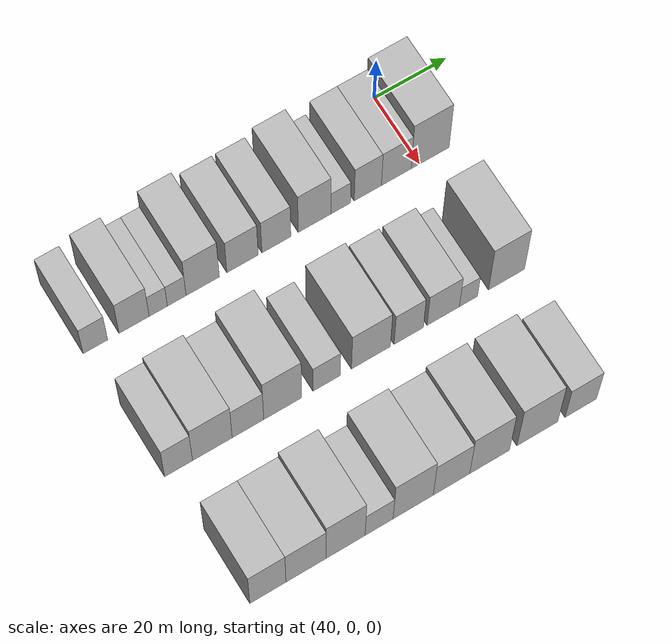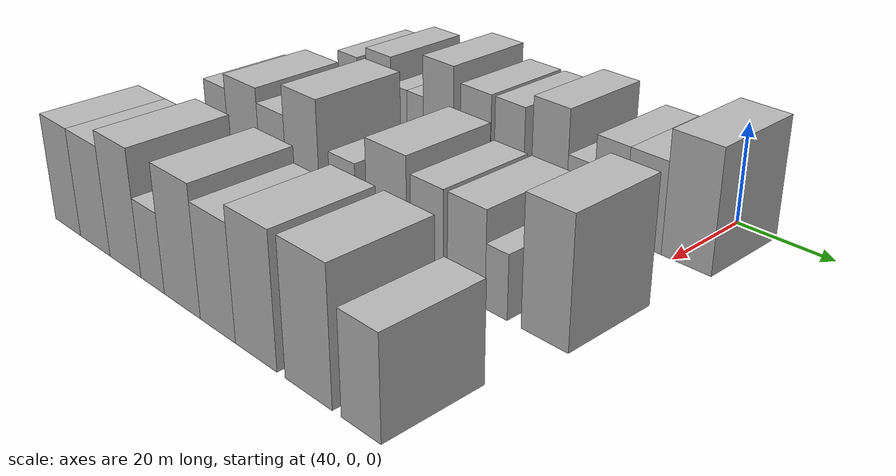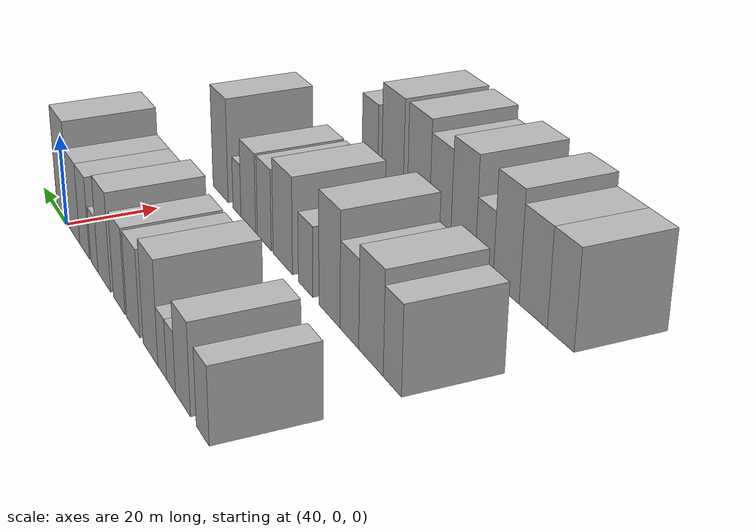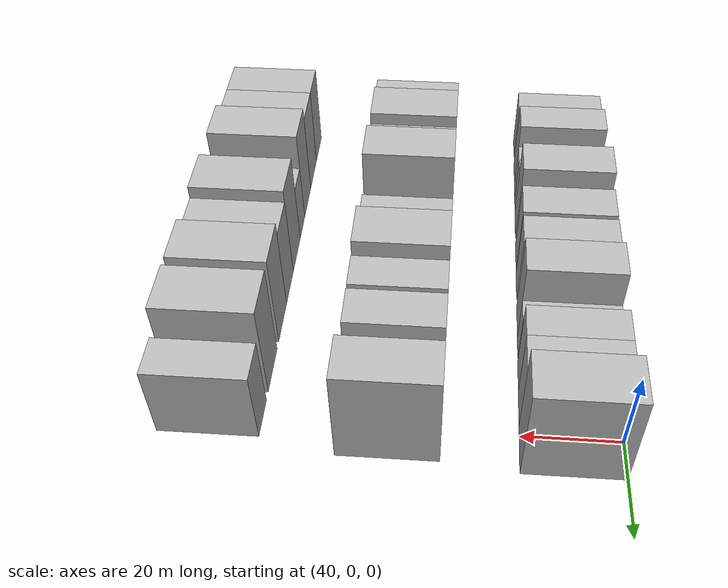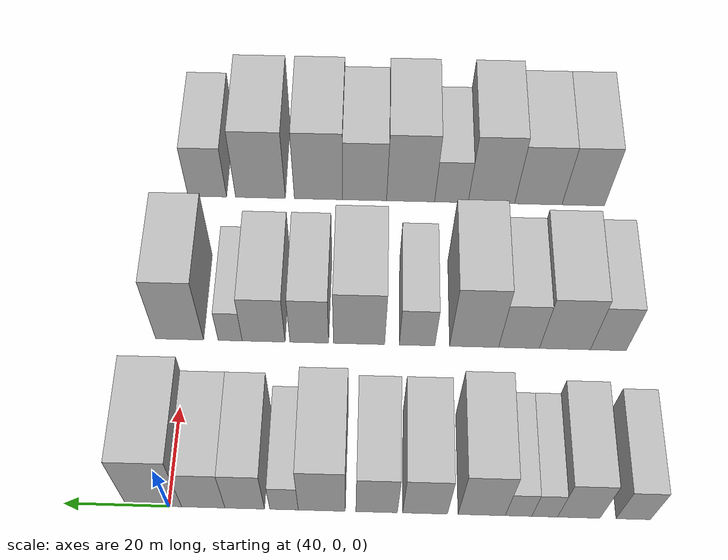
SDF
<sdf version="1.6">
 <world name="default">
  <model name="building_30">
   <static>1</static>
   <pose>50.0000 -87.4244 0 0.000000 0.000000 0.000000</pose>
   <link name="link">
    <pose>0 0 7.50 0 0 0</pose>
    <collision name="collision"><geometry><box><size>20.0000 6.4481 15.0000</size></box></geometry></collision>
    <visual name="visual">
     <cast_shadows>0</cast_shadows>
     <geometry><box><size>20.0000 6.4481 15.0000</size></box></geometry>
     <material>
      <script>
       <uri>model://HANNAS_wall/materials/scripts</uri>
       <uri>model://HANNAS_wall/materials/textures</uri>
       <name>vrc/HANNAS_wall</name>
      </script>
     </material>
    </visual>
   </link>
  </model>
  <model name="building_31">
   <static>1</static>
   <pose>50.0000 -77.2165 0 0.000000 0.000000 0.000000</pose>
   <link name="link">
    <pose>0 0 9.00 0 0 0</pose>
    <collision name="collision"><geometry><box><size>20.0000 7.9678 18.0000</size></box></geometry></collision>
    <visual name="visual">
     <cast_shadows>0</cast_shadows>
     <geometry><box><size>20.0000 7.9678 18.0000</size></box></geometry>
     <material>
      <script>
       <uri>model://HANNAS_wall/materials/scripts</uri>
       <uri>model://HANNAS_wall/materials/textures</uri>
       <name>vrc/HANNAS_wall</name>
      </script>
     </material>
    </visual>
   </link>
  </model>
  <model name="building_32">
   <static>1</static>
   <pose>50.0000 -70.8102 0 0.000000 0.000000 0.000000</pose>
   <link name="link">
    <pose>0 0 6.00 0 0 0</pose>
    <collision name="collision"><geometry><box><size>20.0000 4.8449 12.0000</size></box></geometry></collision>
    <visual name="visual">
     <cast_shadows>0</cast_shadows>
     <geometry><box><size>20.0000 4.8449 12.0000</size></box></geometry>
     <material>
      <script>
       <uri>model://HANNAS_wall/materials/scripts</uri>
       <uri>model://HANNAS_wall/materials/textures</uri>
       <name>vrc/HANNAS_wall</name>
      </script>
     </material>
    </visual>
   </link>
  </model>
  <model name="building_33">
   <static>1</static>
   <pose>50.0000 -65.8977 0 0.000000 0.000000 0.000000</pose>
   <link name="link">
    <pose>0 0 6.00 0 0 0</pose>
    <collision name="collision"><geometry><box><size>20.0000 4.9800 12.0000</size></box></geometry></collision>
    <visual name="visual">
     <cast_shadows>0</cast_shadows>
     <geometry><box><size>20.0000 4.9800 12.0000</size></box></geometry>
     <material>
      <script>
       <uri>model://HANNAS_wall/materials/scripts</uri>
       <uri>model://HANNAS_wall/materials/textures</uri>
       <name>vrc/HANNAS_wall</name>
      </script>
     </material>
    </visual>
   </link>
  </model>
  <model name="building_34">
   <static>1</static>
   <pose>50.0000 -58.9646 0 0.000000 0.000000 0.000000</pose>
   <link name="link">
    <pose>0 0 10.50 0 0 0</pose>
    <collision name="collision"><geometry><box><size>20.0000 8.8863 21.0000</size></box></geometry></collision>
    <visual name="visual">
     <cast_shadows>0</cast_shadows>
     <geometry><box><size>20.0000 8.8863 21.0000</size></box></geometry>
     <material>
      <script>
       <uri>model://HANNAS_wall/materials/scripts</uri>
       <uri>model://HANNAS_wall/materials/textures</uri>
       <name>vrc/HANNAS_wall</name>
      </script>
     </material>
    </visual>
   </link>
  </model>
  <model name="building_35">
   <static>1</static>
   <pose>50.0000 -48.3044 0 0.000000 0.000000 0.000000</pose>
   <link name="link">
    <pose>0 0 9.00 0 0 0</pose>
    <collision name="collision"><geometry><box><size>20.0000 8.4340 18.0000</size></box></geometry></collision>
    <visual name="visual">
     <cast_shadows>0</cast_shadows>
     <geometry><box><size>20.0000 8.4340 18.0000</size></box></geometry>
     <material>
      <script>
       <uri>model://HANNAS_wall/materials/scripts</uri>
       <uri>model://HANNAS_wall/materials/textures</uri>
       <name>vrc/HANNAS_wall</name>
      </script>
     </material>
    </visual>
   </link>
  </model>
  <model name="building_36">
   <static>1</static>
   <pose>50.0000 -39.1806 0 0.000000 0.000000 0.000000</pose>
   <link name="link">
    <pose>0 0 9.00 0 0 0</pose>
    <collision name="collision"><geometry><box><size>20.0000 7.8136 18.0000</size></box></geometry></collision>
    <visual name="visual">
     <cast_shadows>0</cast_shadows>
     <geometry><box><size>20.0000 7.8136 18.0000</size></box></geometry>
     <material>
      <script>
       <uri>model://HANNAS_wall/materials/scripts</uri>
       <uri>model://HANNAS_wall/materials/textures</uri>
       <name>vrc/HANNAS_wall</name>
      </script>
     </material>
    </visual>
   </link>
  </model>
  <model name="building_37">
   <static>1</static>
   <pose>50.0000 -28.8370 0 0.000000 0.000000 0.000000</pose>
   <link name="link">
    <pose>0 0 10.50 0 0 0</pose>
    <collision name="collision"><geometry><box><size>20.0000 8.8737 21.0000</size></box></geometry></collision>
    <visual name="visual">
     <cast_shadows>0</cast_shadows>
     <geometry><box><size>20.0000 8.8737 21.0000</size></box></geometry>
     <material>
      <script>
       <uri>model://HANNAS_wall/materials/scripts</uri>
       <uri>model://HANNAS_wall/materials/textures</uri>
       <name>vrc/HANNAS_wall</name>
      </script>
     </material>
    </visual>
   </link>
  </model>
  <model name="building_38">
   <static>1</static>
   <pose>50.0000 -21.7184 0 0.000000 0.000000 0.000000</pose>
   <link name="link">
    <pose>0 0 6.00 0 0 0</pose>
    <collision name="collision"><geometry><box><size>20.0000 5.3636 12.0000</size></box></geometry></collision>
    <visual name="visual">
     <cast_shadows>0</cast_shadows>
     <geometry><box><size>20.0000 5.3636 12.0000</size></box></geometry>
     <material>
      <script>
       <uri>model://HANNAS_wall/materials/scripts</uri>
       <uri>model://HANNAS_wall/materials/textures</uri>
       <name>vrc/HANNAS_wall</name>
      </script>
     </material>
    </visual>
   </link>
  </model>
  <model name="building_39">
   <static>1</static>
   <pose>50.0000 -14.2941 0 0.000000 0.000000 0.000000</pose>
   <link name="link">
    <pose>0 0 9.00 0 0 0</pose>
    <collision name="collision"><geometry><box><size>20.0000 7.4851 18.0000</size></box></geometry></collision>
    <visual name="visual">
     <cast_shadows>0</cast_shadows>
     <geometry><box><size>20.0000 7.4851 18.0000</size></box></geometry>
     <material>
      <script>
       <uri>model://HANNAS_wall/materials/scripts</uri>
       <uri>model://HANNAS_wall/materials/textures</uri>
       <name>vrc/HANNAS_wall</name>
      </script>
     </material>
    </visual>
   </link>
  </model>
  <model name="building_40">
   <static>1</static>
   <pose>50.0000 -6.4519 0 0.000000 0.000000 0.000000</pose>
   <link name="link">
    <pose>0 0 9.00 0 0 0</pose>
    <collision name="collision"><geometry><box><size>20.0000 8.1993 18.0000</size></box></geometry></collision>
    <visual name="visual">
     <cast_shadows>0</cast_shadows>
     <geometry><box><size>20.0000 8.1993 18.0000</size></box></geometry>
     <material>
      <script>
       <uri>model://HANNAS_wall/materials/scripts</uri>
       <uri>model://HANNAS_wall/materials/textures</uri>
       <name>vrc/HANNAS_wall</name>
      </script>
     </material>
    </visual>
   </link>
  </model>
  <model name="building_41">
   <static>1</static>
   <pose>50.0000 2.8900 0 0.000000 0.000000 0.000000</pose>
   <link name="link">
    <pose>0 0 12.00 0 0 0</pose>
    <collision name="collision"><geometry><box><size>20.0000 10.4844 24.0000</size></box></geometry></collision>
    <visual name="visual">
     <cast_shadows>0</cast_shadows>
     <geometry><box><size>20.0000 10.4844 24.0000</size></box></geometry>
     <material>
      <script>
       <uri>model://HANNAS_wall/materials/scripts</uri>
       <uri>model://HANNAS_wall/materials/textures</uri>
       <name>vrc/HANNAS_wall</name>
      </script>
     </material>
    </visual>
   </link>
  </model>
  <model name="building_118">
   <static>1</static>
   <pose>85.0000 -85.8840 0 0.000000 0.000000 0.000000</pose>
   <link name="link">
    <pose>0 0 9.00 0 0 0</pose>
    <collision name="collision"><geometry><box><size>20.0000 7.2810 18.0000</size></box></geometry></collision>
    <visual name="visual">
     <cast_shadows>0</cast_shadows>
     <geometry><box><size>20.0000 7.2810 18.0000</size></box></geometry>
     <material>
      <script>
       <uri>model://HANNAS_wall/materials/scripts</uri>
       <uri>model://HANNAS_wall/materials/textures</uri>
       <name>vrc/HANNAS_wall</name>
      </script>
     </material>
    </visual>
   </link>
  </model>
  <model name="building_119">
   <static>1</static>
   <pose>85.0000 -77.0616 0 0.000000 0.000000 0.000000</pose>
   <link name="link">
    <pose>0 0 10.50 0 0 0</pose>
    <collision name="collision"><geometry><box><size>20.0000 10.3640 21.0000</size></box></geometry></collision>
    <visual name="visual">
     <cast_shadows>0</cast_shadows>
     <geometry><box><size>20.0000 10.3640 21.0000</size></box></geometry>
     <material>
      <script>
       <uri>model://HANNAS_wall/materials/scripts</uri>
       <uri>model://HANNAS_wall/materials/textures</uri>
       <name>vrc/HANNAS_wall</name>
      </script>
     </material>
    </visual>
   </link>
  </model>
  <model name="building_120">
   <static>1</static>
   <pose>85.0000 -67.7225 0 0.000000 0.000000 0.000000</pose>
   <link name="link">
    <pose>0 0 9.00 0 0 0</pose>
    <collision name="collision"><geometry><box><size>20.0000 8.3142 18.0000</size></box></geometry></collision>
    <visual name="visual">
     <cast_shadows>0</cast_shadows>
     <geometry><box><size>20.0000 8.3142 18.0000</size></box></geometry>
     <material>
      <script>
       <uri>model://HANNAS_wall/materials/scripts</uri>
       <uri>model://HANNAS_wall/materials/textures</uri>
       <name>vrc/HANNAS_wall</name>
      </script>
     </material>
    </visual>
   </link>
  </model>
  <model name="building_121">
   <static>1</static>
   <pose>85.0000 -58.5630 0 0.000000 0.000000 0.000000</pose>
   <link name="link">
    <pose>0 0 12.00 0 0 0</pose>
    <collision name="collision"><geometry><box><size>20.0000 10.0049 24.0000</size></box></geometry></collision>
    <visual name="visual">
     <cast_shadows>0</cast_shadows>
     <geometry><box><size>20.0000 10.0049 24.0000</size></box></geometry>
     <material>
      <script>
       <uri>model://HANNAS_wall/materials/scripts</uri>
       <uri>model://HANNAS_wall/materials/textures</uri>
       <name>vrc/HANNAS_wall</name>
      </script>
     </material>
    </visual>
   </link>
  </model>
  <model name="building_122">
   <static>1</static>
   <pose>85.0000 -46.9334 0 0.000000 0.000000 0.000000</pose>
   <link name="link">
    <pose>0 0 7.50 0 0 0</pose>
    <collision name="collision"><geometry><box><size>20.0000 7.2543 15.0000</size></box></geometry></collision>
    <visual name="visual">
     <cast_shadows>0</cast_shadows>
     <geometry><box><size>20.0000 7.2543 15.0000</size></box></geometry>
     <material>
      <script>
       <uri>model://HANNAS_wall/materials/scripts</uri>
       <uri>model://HANNAS_wall/materials/textures</uri>
       <name>vrc/HANNAS_wall</name>
      </script>
     </material>
    </visual>
   </link>
  </model>
  <model name="building_123">
   <static>1</static>
   <pose>85.0000 -35.0860 0 0.000000 0.000000 0.000000</pose>
   <link name="link">
    <pose>0 0 10.50 0 0 0</pose>
    <collision name="collision"><geometry><box><size>20.0000 10.4404 21.0000</size></box></geometry></collision>
    <visual name="visual">
     <cast_shadows>0</cast_shadows>
     <geometry><box><size>20.0000 10.4404 21.0000</size></box></geometry>
     <material>
      <script>
       <uri>model://HANNAS_wall/materials/scripts</uri>
       <uri>model://HANNAS_wall/materials/textures</uri>
       <name>vrc/HANNAS_wall</name>
      </script>
     </material>
    </visual>
   </link>
  </model>
  <model name="building_124">
   <static>1</static>
   <pose>85.0000 -24.9152 0 0.000000 0.000000 0.000000</pose>
   <link name="link">
    <pose>0 0 9.00 0 0 0</pose>
    <collision name="collision"><geometry><box><size>20.0000 7.9013 18.0000</size></box></geometry></collision>
    <visual name="visual">
     <cast_shadows>0</cast_shadows>
     <geometry><box><size>20.0000 7.9013 18.0000</size></box></geometry>
     <material>
      <script>
       <uri>model://HANNAS_wall/materials/scripts</uri>
       <uri>model://HANNAS_wall/materials/textures</uri>
       <name>vrc/HANNAS_wall</name>
      </script>
     </material>
    </visual>
   </link>
  </model>
  <model name="building_125">
   <static>1</static>
   <pose>85.0000 -15.5747 0 0.000000 0.000000 0.000000</pose>
   <link name="link">
    <pose>0 0 9.00 0 0 0</pose>
    <collision name="collision"><geometry><box><size>20.0000 8.7797 18.0000</size></box></geometry></collision>
    <visual name="visual">
     <cast_shadows>0</cast_shadows>
     <geometry><box><size>20.0000 8.7797 18.0000</size></box></geometry>
     <material>
      <script>
       <uri>model://HANNAS_wall/materials/scripts</uri>
       <uri>model://HANNAS_wall/materials/textures</uri>
       <name>vrc/HANNAS_wall</name>
      </script>
     </material>
    </visual>
   </link>
  </model>
  <model name="building_126">
   <static>1</static>
   <pose>85.0000 -8.7260 0 0.000000 0.000000 0.000000</pose>
   <link name="link">
    <pose>0 0 6.00 0 0 0</pose>
    <collision name="collision"><geometry><box><size>20.0000 4.9177 12.0000</size></box></geometry></collision>
    <visual name="visual">
     <cast_shadows>0</cast_shadows>
     <geometry><box><size>20.0000 4.9177 12.0000</size></box></geometry>
     <material>
      <script>
       <uri>model://HANNAS_wall/materials/scripts</uri>
       <uri>model://HANNAS_wall/materials/textures</uri>
       <name>vrc/HANNAS_wall</name>
      </script>
     </material>
    </visual>
   </link>
  </model>
  <model name="building_127">
   <static>1</static>
   <pose>85.0000 1.6451 0 0.000000 0.000000 0.000000</pose>
   <link name="link">
    <pose>0 0 12.00 0 0 0</pose>
    <collision name="collision"><geometry><box><size>20.0000 9.8245 24.0000</size></box></geometry></collision>
    <visual name="visual">
     <cast_shadows>0</cast_shadows>
     <geometry><box><size>20.0000 9.8245 24.0000</size></box></geometry>
     <material>
      <script>
       <uri>model://HANNAS_wall/materials/scripts</uri>
       <uri>model://HANNAS_wall/materials/textures</uri>
       <name>vrc/HANNAS_wall</name>
      </script>
     </material>
    </visual>
   </link>
  </model>
  <model name="building_197">
   <static>1</static>
   <pose>120.0000 -83.5003 0 0.000000 0.000000 0.000000</pose>
   <link name="link">
    <pose>0 0 10.50 0 0 0</pose>
    <collision name="collision"><geometry><box><size>20.0000 9.3018 21.0000</size></box></geometry></collision>
    <visual name="visual">
     <cast_shadows>0</cast_shadows>
     <geometry><box><size>20.0000 9.3018 21.0000</size></box></geometry>
     <material>
      <script>
       <uri>model://HANNAS_wall/materials/scripts</uri>
       <uri>model://HANNAS_wall/materials/textures</uri>
       <name>vrc/HANNAS_wall</name>
      </script>
     </material>
    </visual>
   </link>
  </model>
  <model name="building_198">
   <static>1</static>
   <pose>120.0000 -73.6577 0 0.000000 0.000000 0.000000</pose>
   <link name="link">
    <pose>0 0 10.50 0 0 0</pose>
    <collision name="collision"><geometry><box><size>20.0000 10.3835 21.0000</size></box></geometry></collision>
    <visual name="visual">
     <cast_shadows>0</cast_shadows>
     <geometry><box><size>20.0000 10.3835 21.0000</size></box></geometry>
     <material>
      <script>
       <uri>model://HANNAS_wall/materials/scripts</uri>
       <uri>model://HANNAS_wall/materials/textures</uri>
       <name>vrc/HANNAS_wall</name>
      </script>
     </material>
    </visual>
   </link>
  </model>
  <model name="building_199">
   <static>1</static>
   <pose>120.0000 -63.3701 0 0.000000 0.000000 0.000000</pose>
   <link name="link">
    <pose>0 0 12.00 0 0 0</pose>
    <collision name="collision"><geometry><box><size>20.0000 10.1918 24.0000</size></box></geometry></collision>
    <visual name="visual">
     <cast_shadows>0</cast_shadows>
     <geometry><box><size>20.0000 10.1918 24.0000</size></box></geometry>
     <material>
      <script>
       <uri>model://HANNAS_wall/materials/scripts</uri>
       <uri>model://HANNAS_wall/materials/textures</uri>
       <name>vrc/HANNAS_wall</name>
      </script>
     </material>
    </visual>
   </link>
  </model>
  <model name="building_200">
   <static>1</static>
   <pose>120.0000 -54.5985 0 0.000000 0.000000 0.000000</pose>
   <link name="link">
    <pose>0 0 7.50 0 0 0</pose>
    <collision name="collision"><geometry><box><size>20.0000 7.3514 15.0000</size></box></geometry></collision>
    <visual name="visual">
     <cast_shadows>0</cast_shadows>
     <geometry><box><size>20.0000 7.3514 15.0000</size></box></geometry>
     <material>
      <script>
       <uri>model://HANNAS_wall/materials/scripts</uri>
       <uri>model://HANNAS_wall/materials/textures</uri>
       <name>vrc/HANNAS_wall</name>
      </script>
     </material>
    </visual>
   </link>
  </model>
  <model name="building_201">
   <static>1</static>
   <pose>120.0000 -45.6325 0 0.000000 0.000000 0.000000</pose>
   <link name="link">
    <pose>0 0 12.00 0 0 0</pose>
    <collision name="collision"><geometry><box><size>20.0000 10.5806 24.0000</size></box></geometry></collision>
    <visual name="visual">
     <cast_shadows>0</cast_shadows>
     <geometry><box><size>20.0000 10.5806 24.0000</size></box></geometry>
     <material>
      <script>
       <uri>model://HANNAS_wall/materials/scripts</uri>
       <uri>model://HANNAS_wall/materials/textures</uri>
       <name>vrc/HANNAS_wall</name>
      </script>
     </material>
    </visual>
   </link>
  </model>
  <model name="building_202">
   <static>1</static>
   <pose>120.0000 -35.5060 0 0.000000 0.000000 0.000000</pose>
   <link name="link">
    <pose>0 0 10.50 0 0 0</pose>
    <collision name="collision"><geometry><box><size>20.0000 9.6723 21.0000</size></box></geometry></collision>
    <visual name="visual">
     <cast_shadows>0</cast_shadows>
     <geometry><box><size>20.0000 9.6723 21.0000</size></box></geometry>
     <material>
      <script>
       <uri>model://HANNAS_wall/materials/scripts</uri>
       <uri>model://HANNAS_wall/materials/textures</uri>
       <name>vrc/HANNAS_wall</name>
      </script>
     </material>
    </visual>
   </link>
  </model>
  <model name="building_203">
   <static>1</static>
   <pose>120.0000 -25.3675 0 0.000000 0.000000 0.000000</pose>
   <link name="link">
    <pose>0 0 12.00 0 0 0</pose>
    <collision name="collision"><geometry><box><size>20.0000 10.6047 24.0000</size></box></geometry></collision>
    <visual name="visual">
     <cast_shadows>0</cast_shadows>
     <geometry><box><size>20.0000 10.6047 24.0000</size></box></geometry>
     <material>
      <script>
       <uri>model://HANNAS_wall/materials/scripts</uri>
       <uri>model://HANNAS_wall/materials/textures</uri>
       <name>vrc/HANNAS_wall</name>
      </script>
     </material>
    </visual>
   </link>
  </model>
  <model name="building_204">
   <static>1</static>
   <pose>120.0000 -12.5828 0 0.000000 0.000000 0.000000</pose>
   <link name="link">
    <pose>0 0 12.00 0 0 0</pose>
    <collision name="collision"><geometry><box><size>20.0000 10.9646 24.0000</size></box></geometry></collision>
    <visual name="visual">
     <cast_shadows>0</cast_shadows>
     <geometry><box><size>20.0000 10.9646 24.0000</size></box></geometry>
     <material>
      <script>
       <uri>model://HANNAS_wall/materials/scripts</uri>
       <uri>model://HANNAS_wall/materials/textures</uri>
       <name>vrc/HANNAS_wall</name>
      </script>
     </material>
    </visual>
   </link>
  </model>
  <model name="building_205">
   <static>1</static>
   <pose>120.0000 -0.8513 0 0.000000 0.000000 0.000000</pose>
   <link name="link">
    <pose>0 0 9.00 0 0 0</pose>
    <collision name="collision"><geometry><box><size>20.0000 8.4985 18.0000</size></box></geometry></collision>
    <visual name="visual">
     <cast_shadows>0</cast_shadows>
     <geometry><box><size>20.0000 8.4985 18.0000</size></box></geometry>
     <material>
      <script>
       <uri>model://HANNAS_wall/materials/scripts</uri>
       <uri>model://HANNAS_wall/materials/textures</uri>
       <name>vrc/HANNAS_wall</name>
      </script>
     </material>
    </visual>
   </link>
  </model>
 </world>
</sdf>
